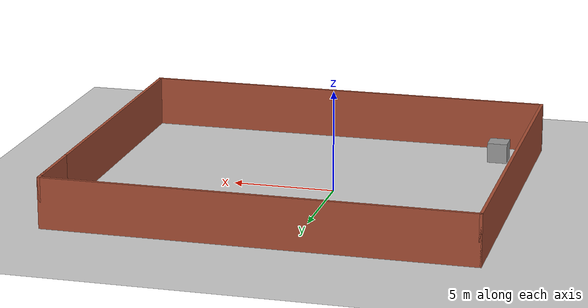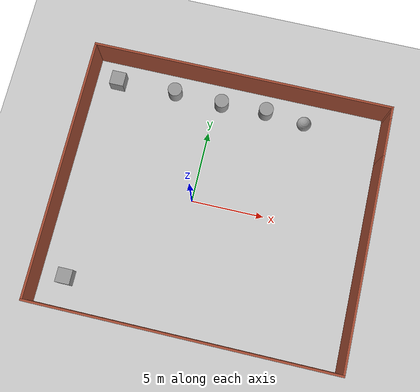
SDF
<sdf version="1.6">
 <world name="default">
  <light name="sun" type="directional">
   <pose>0 0 10 0 -0 0</pose>
   <diffuse>0.8 0.8 0.8 1</diffuse>
   <specular>0.1 0.1 0.1 1</specular>
   <attenuation>
    <range>1000</range>
    <constant>0.9</constant>
    <linear>0.01</linear>
    <quadratic>0.001</quadratic>
   </attenuation>
   <direction>-0.5 0.5 -1</direction>
  </light>
  <model name="ground_plane">
   <static>1</static>
   <link name="link">
    <collision name="collision">
     <geometry><plane><normal>0 0 1</normal><size>100 100</size></plane></geometry>
     <surface><friction><ode><mu>100</mu><mu2>50</mu2></ode></friction></surface>
    </collision>
    <visual name="visual">
     <cast_shadows>0</cast_shadows>
     <geometry><plane><normal>0 0 1</normal><size>100 100</size></plane></geometry>
     <material>
      <script><uri>file://media/materials/scripts/gazebo.material</uri><name>Gazebo/Grey</name></script>
     </material>
    </visual>
   </link>
  </model>
  <gravity>0 0 -9.8</gravity>
  <magnetic_field>6e-06 2.3e-05 -4.2e-05</magnetic_field>
  <atmosphere type="adiabatic"/>
  <physics name="default_physics" default="0" type="ode">
   <max_step_size>0.001</max_step_size>
   <real_time_factor>1</real_time_factor>
   <real_time_update_rate>1000</real_time_update_rate>
  </physics>
  <scene><ambient>0.4 0.4 0.4 1</ambient><background>0.7 0.7 0.7 1</background><shadows>1</shadows></scene>
  <spherical_coordinates>
   <surface_model>EARTH_WGS84</surface_model>
   <latitude_deg>0</latitude_deg>
   <longitude_deg>0</longitude_deg>
   <elevation>0</elevation>
   <heading_deg>0</heading_deg>
  </spherical_coordinates>
  <model name="Untitled">
   <pose>1.50483 -0.146788 0 0 -0 0</pose>
   <link name="Wall_0">
    <collision name="Wall_0_Collision">
     <geometry><box><size>14.5 0.15 2.5</size></box></geometry>
     <pose>0 0 1.25 0 -0 0</pose>
    </collision>
    <visual name="Wall_0_Visual">
     <pose>0 0 1.25 0 -0 0</pose>
     <geometry><box><size>14.5 0.15 2.5</size></box></geometry>
     <material>
      <script><uri>file://media/materials/scripts/gazebo.material</uri><name>Gazebo/Bricks</name></script>
      <ambient>1 1 1 1</ambient>
     </material>
    </visual>
    <pose>10.3 -1.75 0 0 -0 1.5708</pose>
   </link>
   <link name="Wall_1">
    <collision name="Wall_1_Collision">
     <geometry><box><size>3.25 0.15 2.5</size></box></geometry>
     <pose>0 0 1.25 0 -0 0</pose>
    </collision>
    <visual name="Wall_1_Visual">
     <pose>0 0 1.25 0 -0 0</pose>
     <geometry><box><size>3.25 0.15 2.5</size></box></geometry>
     <material>
      <script><uri>file://media/materials/scripts/gazebo.material</uri><name>Gazebo/Bricks</name></script>
      <ambient>1 1 1 1</ambient>
     </material>
    </visual>
    <pose>10.3 6.975 0 0 -0 1.5708</pose>
   </link>
   <link name="Wall_3">
    <collision name="Wall_3_Collision">
     <geometry><box><size>20.75 0.15 2.5</size></box></geometry>
     <pose>0 0 1.25 0 -0 0</pose>
    </collision>
    <visual name="Wall_3_Visual">
     <pose>0 0 1.25 0 -0 0</pose>
     <geometry><box><size>20.75 0.15 2.5</size></box></geometry>
     <material>
      <script><uri>file://media/materials/scripts/gazebo.material</uri><name>Gazebo/Bricks</name></script>
      <ambient>1 1 1 1</ambient>
     </material>
    </visual>
    <pose>0 -8.925 0 0 -0 3.14159</pose>
   </link>
   <link name="Wall_4">
    <collision name="Wall_4_Collision">
     <geometry><box><size>18 0.15 2.5</size></box></geometry>
     <pose>0 0 1.25 0 -0 0</pose>
    </collision>
    <visual name="Wall_4_Visual">
     <pose>0 0 1.25 0 -0 0</pose>
     <geometry><box><size>18 0.15 2.5</size></box></geometry>
     <material>
      <script><uri>file://media/materials/scripts/gazebo.material</uri><name>Gazebo/Bricks</name></script>
      <ambient>1 1 1 1</ambient>
     </material>
    </visual>
    <pose>-10.3 0 0 0 -0 1.5708</pose>
   </link>
   <link name="Wall_5">
    <collision name="Wall_5_Collision">
     <geometry><box><size>20.75 0.15 2.5</size></box></geometry>
     <pose>0 0 1.25 0 -0 0</pose>
    </collision>
    <visual name="Wall_5_Visual">
     <pose>0 0 1.25 0 -0 0</pose>
     <geometry><box><size>20.75 0.15 2.5</size></box></geometry>
     <material>
      <script><uri>file://media/materials/scripts/gazebo.material</uri><name>Gazebo/Bricks</name></script>
      <ambient>1 1 1 1</ambient>
     </material>
    </visual>
    <pose>0 8.925 0 0 -0 0</pose>
   </link>
   <link name="Wall_6">
    <collision name="Wall_6_Collision">
     <geometry><box><size>1.25 0.15 2.5</size></box></geometry>
     <pose>0 0 1.25 0 -0 0</pose>
    </collision>
    <visual name="Wall_6_Visual">
     <pose>0 0 1.25 0 -0 0</pose>
     <geometry><box><size>1.25 0.15 2.5</size></box></geometry>
     <material>
      <script><uri>file://media/materials/scripts/gazebo.material</uri><name>Gazebo/Bricks</name></script>
      <ambient>1 1 1 1</ambient>
     </material>
    </visual>
    <pose>10.3 8.375 0 0 0 -1.5708</pose>
   </link>
   <static>1</static>
  </model>
  <model name="unit_box_0">
   <pose>-6.96471 -6.96388 0.499995 0 1e-05 0</pose>
   <link name="link">
    <inertial>
     <mass>1</mass>
     <inertia>
      <ixx>0.166667</ixx>
      <ixy>0</ixy>
      <ixz>0</ixz>
      <iyy>0.166667</iyy>
      <iyz>0</iyz>
      <izz>0.166667</izz>
     </inertia>
    </inertial>
    <collision name="collision"><geometry><box><size>1 1 1</size></box></geometry></collision>
    <visual name="visual">
     <geometry><box><size>1 1 1</size></box></geometry>
     <material>
      <script><name>Gazebo/Grey</name><uri>file://media/materials/scripts/gazebo.material</uri></script>
     </material>
    </visual>
   </link>
  </model>
  <model name="unit_box_1">
   <pose>-7.07039 7.24524 0.499995 -1e-05 0 0</pose>
   <link name="link">
    <inertial>
     <mass>1</mass>
     <inertia>
      <ixx>0.166667</ixx>
      <ixy>0</ixy>
      <ixz>0</ixz>
      <iyy>0.166667</iyy>
      <iyz>0</iyz>
      <izz>0.166667</izz>
     </inertia>
    </inertial>
    <collision name="collision"><geometry><box><size>1 1 1</size></box></geometry></collision>
    <visual name="visual">
     <geometry><box><size>1 1 1</size></box></geometry>
     <material>
      <script><name>Gazebo/Grey</name><uri>file://media/materials/scripts/gazebo.material</uri></script>
     </material>
    </visual>
   </link>
  </model>
  <model name="unit_cylinder_0">
   <pose>-2.96281 7.34822 0.499992 -3e-06 3e-06 0</pose>
   <link name="link">
    <inertial>
     <mass>1</mass>
     <inertia><ixx>0.145833</ixx><ixy>0</ixy><ixz>0</ixz><iyy>0.145833</iyy><iyz>0</iyz><izz>0.125</izz></inertia>
    </inertial>
    <collision name="collision">
     <geometry><cylinder><radius>0.5</radius><length>1</length></cylinder></geometry>
    </collision>
    <visual name="visual">
     <geometry><cylinder><radius>0.5</radius><length>1</length></cylinder></geometry>
     <material>
      <script><name>Gazebo/Grey</name><uri>file://media/materials/scripts/gazebo.material</uri></script>
     </material>
    </visual>
   </link>
  </model>
  <model name="unit_cylinder_1">
   <pose>0.419895 7.25053 0.499998 3e-06 -3e-06 0</pose>
   <link name="link">
    <inertial>
     <mass>1</mass>
     <inertia><ixx>0.145833</ixx><ixy>0</ixy><ixz>0</ixz><iyy>0.145833</iyy><iyz>0</iyz><izz>0.125</izz></inertia>
    </inertial>
    <collision name="collision">
     <geometry><cylinder><radius>0.5</radius><length>1</length></cylinder></geometry>
    </collision>
    <visual name="visual">
     <geometry><cylinder><radius>0.5</radius><length>1</length></cylinder></geometry>
     <material>
      <script><name>Gazebo/Grey</name><uri>file://media/materials/scripts/gazebo.material</uri></script>
     </material>
    </visual>
   </link>
  </model>
  <model name="unit_cylinder_2">
   <pose>3.58677 7.36506 0.499992 -3e-06 3e-06 0</pose>
   <link name="link">
    <inertial>
     <mass>1</mass>
     <inertia><ixx>0.145833</ixx><ixy>0</ixy><ixz>0</ixz><iyy>0.145833</iyy><iyz>0</iyz><izz>0.125</izz></inertia>
    </inertial>
    <collision name="collision">
     <geometry><cylinder><radius>0.5</radius><length>1</length></cylinder></geometry>
    </collision>
    <visual name="visual">
     <geometry><cylinder><radius>0.5</radius><length>1</length></cylinder></geometry>
     <material>
      <script><name>Gazebo/Grey</name><uri>file://media/materials/scripts/gazebo.material</uri></script>
     </material>
    </visual>
   </link>
  </model>
  <model name="unit_sphere_0">
   <pose>6.37672 7.04879 0.5 0 -0 0</pose>
   <link name="link">
    <inertial>
     <mass>1</mass>
     <inertia><ixx>0.1</ixx><ixy>0</ixy><ixz>0</ixz><iyy>0.1</iyy><iyz>0</iyz><izz>0.1</izz></inertia>
    </inertial>
    <collision name="collision"><geometry><sphere><radius>0.5</radius></sphere></geometry></collision>
    <visual name="visual">
     <geometry><sphere><radius>0.5</radius></sphere></geometry>
     <material>
      <script><name>Gazebo/Grey</name><uri>file://media/materials/scripts/gazebo.material</uri></script>
     </material>
    </visual>
   </link>
  </model>
 </world>
</sdf>
